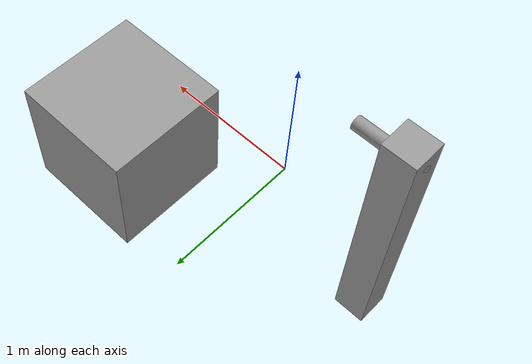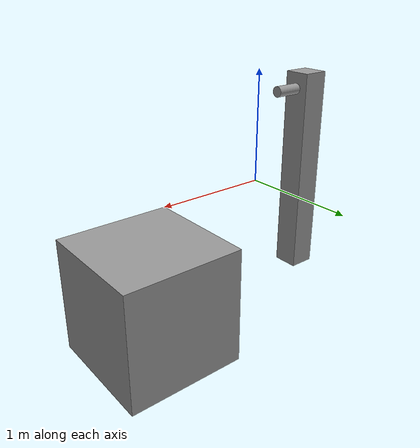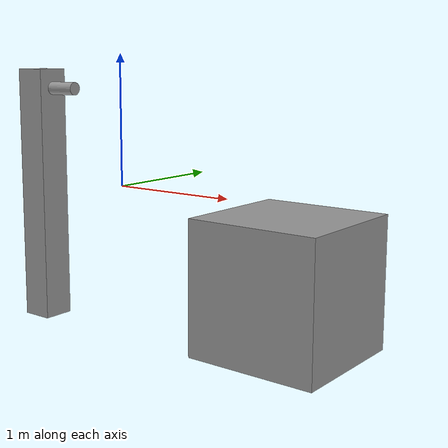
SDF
<?xml version='1.0'?>
<sdf version='1.7'>
  <model name='test'>
    <link name='link_11'>
      <inertial>
        <mass>1</mass>
        <inertia>
          <ixx>0.145833</ixx>
          <ixy>0</ixy>
          <ixz>0</ixz>
          <iyy>0.145833</iyy>
          <iyz>0</iyz>
          <izz>0.125</izz>
        </inertia>
        <pose>0 0 0 0 -0 0</pose>
      </inertial>
      <pose>-0.60883 -0.132345 0.733333 1.57 -0 1.57</pose>
      <gravity>1</gravity>
      <self_collide>0</self_collide>
      <kinematic>0</kinematic>
      <enable_wind>0</enable_wind>
      <visual name='visual'>
        <pose>0 0 0 0 -0 0</pose>
        <geometry>
          <cylinder>
            <radius>0.05</radius>
            <length>0.5</length>
          </cylinder>
        </geometry>
        <material>
          <lighting>1</lighting>
          <script>
            <uri>file://media/materials/scripts/gazebo.material</uri>
            <name>Gazebo/Grey</name>
          </script>
          <shader type='pixel'>
            <normal_map>__default__</normal_map>
          </shader>
          <ambient>0.3 0.3 0.3 1</ambient>
          <diffuse>0.7 0.7 0.7 1</diffuse>
          <specular>0.01 0.01 0.01 1</specular>
          <emissive>0 0 0 1</emissive>
        </material>
        <transparency>0</transparency>
        <cast_shadows>1</cast_shadows>
      </visual>
      <collision name='collision'>
        <laser_retro>0</laser_retro>
        <max_contacts>10</max_contacts>
        <pose>0 0 0 0 -0 0</pose>
        <geometry>
          <cylinder>
            <radius>0.5</radius>
            <length>1</length>
          </cylinder>
        </geometry>
        <surface>
          <friction>
            <ode>
              <mu>1</mu>
              <mu2>1</mu2>
              <fdir1>0 0 0</fdir1>
              <slip1>0</slip1>
              <slip2>0</slip2>
            </ode>
            <torsional>
              <coefficient>1</coefficient>
              <patch_radius>0</patch_radius>
              <surface_radius>0</surface_radius>
              <use_patch_radius>1</use_patch_radius>
              <ode>
                <slip>0</slip>
              </ode>
            </torsional>
          </friction>
          <bounce>
            <restitution_coefficient>0</restitution_coefficient>
            <threshold>1e+06</threshold>
          </bounce>
          <contact>
            <collide_without_contact>0</collide_without_contact>
            <collide_without_contact_bitmask>1</collide_without_contact_bitmask>
            <collide_bitmask>1</collide_bitmask>
            <ode>
              <soft_cfm>0</soft_cfm>
              <soft_erp>0.2</soft_erp>
              <kp>1e+13</kp>
              <kd>1</kd>
              <max_vel>0.01</max_vel>
              <min_depth>0</min_depth>
            </ode>
            <bullet>
              <split_impulse>1</split_impulse>
              <split_impulse_penetration_threshold>-0.01</split_impulse_penetration_threshold>
              <soft_cfm>0</soft_cfm>
              <soft_erp>0.2</soft_erp>
              <kp>1e+13</kp>
              <kd>1</kd>
            </bullet>
          </contact>
        </surface>
      </collision>
    </link>
    <link name='link_12'>
      <inertial>
        <mass>1</mass>
        <inertia>
          <ixx>0.166667</ixx>
          <ixy>0</ixy>
          <ixz>0</ixz>
          <iyy>0.166667</iyy>
          <iyz>0</iyz>
          <izz>0.166667</izz>
        </inertia>
      </inertial>
      <pose>1.34266 0.26469 -0.616667 0 -0 0</pose>
      <visual name='visual'>
        <pose>0 0 0 0 -0 0</pose>
        <geometry>
          <box>
            <size>1 1 1</size>
          </box>
        </geometry>
        <material>
          <lighting>1</lighting>
          <script>
            <uri>file://media/materials/scripts/gazebo.material</uri>
            <name>Gazebo/Grey</name>
          </script>
          <shader type='pixel'/>
        </material>
        <transparency>0</transparency>
        <cast_shadows>1</cast_shadows>
      </visual>
      <collision name='collision'>
        <laser_retro>0</laser_retro>
        <max_contacts>10</max_contacts>
        <pose>0 0 0 0 -0 0</pose>
        <geometry>
          <box>
            <size>1 1 1</size>
          </box>
        </geometry>
        <surface>
          <friction>
            <ode>
              <mu>1</mu>
              <mu2>1</mu2>
              <fdir1>0 0 0</fdir1>
              <slip1>0</slip1>
              <slip2>0</slip2>
            </ode>
            <torsional>
              <coefficient>1</coefficient>
              <patch_radius>0</patch_radius>
              <surface_radius>0</surface_radius>
              <use_patch_radius>1</use_patch_radius>
              <ode>
                <slip>0</slip>
              </ode>
            </torsional>
          </friction>
          <bounce>
            <restitution_coefficient>0</restitution_coefficient>
            <threshold>1e+06</threshold>
          </bounce>
          <contact>
            <collide_without_contact>0</collide_without_contact>
            <collide_without_contact_bitmask>1</collide_without_contact_bitmask>
            <collide_bitmask>1</collide_bitmask>
            <ode>
              <soft_cfm>0</soft_cfm>
              <soft_erp>0.2</soft_erp>
              <kp>1e+13</kp>
              <kd>1</kd>
              <max_vel>0.01</max_vel>
              <min_depth>0</min_depth>
            </ode>
            <bullet>
              <split_impulse>1</split_impulse>
              <split_impulse_penetration_threshold>-0.01</split_impulse_penetration_threshold>
              <soft_cfm>0</soft_cfm>
              <soft_erp>0.2</soft_erp>
              <kp>1e+13</kp>
              <kd>1</kd>
            </bullet>
          </contact>
        </surface>
      </collision>
    </link>
    <link name='link_9'>
      <inertial>
        <mass>1</mass>
        <inertia>
          <ixx>0.166667</ixx>
          <ixy>0</ixy>
          <ixz>0</ixz>
          <iyy>0.166667</iyy>
          <iyz>0</iyz>
          <izz>0.166667</izz>
        </inertia>
        <pose>0 0 0 0 -0 0</pose>
      </inertial>
      <pose>-0.73383 -0.132345 -0.116667 0 -0 0</pose>
      <gravity>1</gravity>
      <self_collide>0</self_collide>
      <kinematic>0</kinematic>
      <enable_wind>0</enable_wind>
      <visual name='visual'>
        <pose>0 0 0 0 -0 0</pose>
        <geometry>
          <box>
            <size>0.25 0.25 2</size>
          </box>
        </geometry>
        <material>
          <lighting>1</lighting>
          <script>
            <uri>file://media/materials/scripts/gazebo.material</uri>
            <name>Gazebo/Grey</name>
          </script>
          <shader type='pixel'>
            <normal_map>__default__</normal_map>
          </shader>
          <ambient>0 0 0 1</ambient>
          <diffuse>0 0 0 1</diffuse>
          <specular>0.01 0.01 0.01 1</specular>
          <emissive>0 0 0 1</emissive>
        </material>
        <transparency>0</transparency>
        <cast_shadows>1</cast_shadows>
      </visual>
      <collision name='collision'>
        <laser_retro>0</laser_retro>
        <max_contacts>10</max_contacts>
        <pose>0 0 0 0 -0 0</pose>
        <geometry>
          <box>
            <size>1 1 1</size>
          </box>
        </geometry>
        <surface>
          <friction>
            <ode>
              <mu>1</mu>
              <mu2>1</mu2>
              <fdir1>0 0 0</fdir1>
              <slip1>0</slip1>
              <slip2>0</slip2>
            </ode>
            <torsional>
              <coefficient>1</coefficient>
              <patch_radius>0</patch_radius>
              <surface_radius>0</surface_radius>
              <use_patch_radius>1</use_patch_radius>
              <ode>
                <slip>0</slip>
              </ode>
            </torsional>
          </friction>
          <bounce>
            <restitution_coefficient>0</restitution_coefficient>
            <threshold>1e+06</threshold>
          </bounce>
          <contact>
            <collide_without_contact>0</collide_without_contact>
            <collide_without_contact_bitmask>1</collide_without_contact_bitmask>
            <collide_bitmask>1</collide_bitmask>
            <ode>
              <soft_cfm>0</soft_cfm>
              <soft_erp>0.2</soft_erp>
              <kp>1e+13</kp>
              <kd>1</kd>
              <max_vel>0.01</max_vel>
              <min_depth>0</min_depth>
            </ode>
            <bullet>
              <split_impulse>1</split_impulse>
              <split_impulse_penetration_threshold>-0.01</split_impulse_penetration_threshold>
              <soft_cfm>0</soft_cfm>
              <soft_erp>0.2</soft_erp>
              <kp>1e+13</kp>
              <kd>1</kd>
            </bullet>
          </contact>
        </surface>
      </collision>
    </link>
    <static>0</static>
    <allow_auto_disable>1</allow_auto_disable>
  </model>
</sdf>
